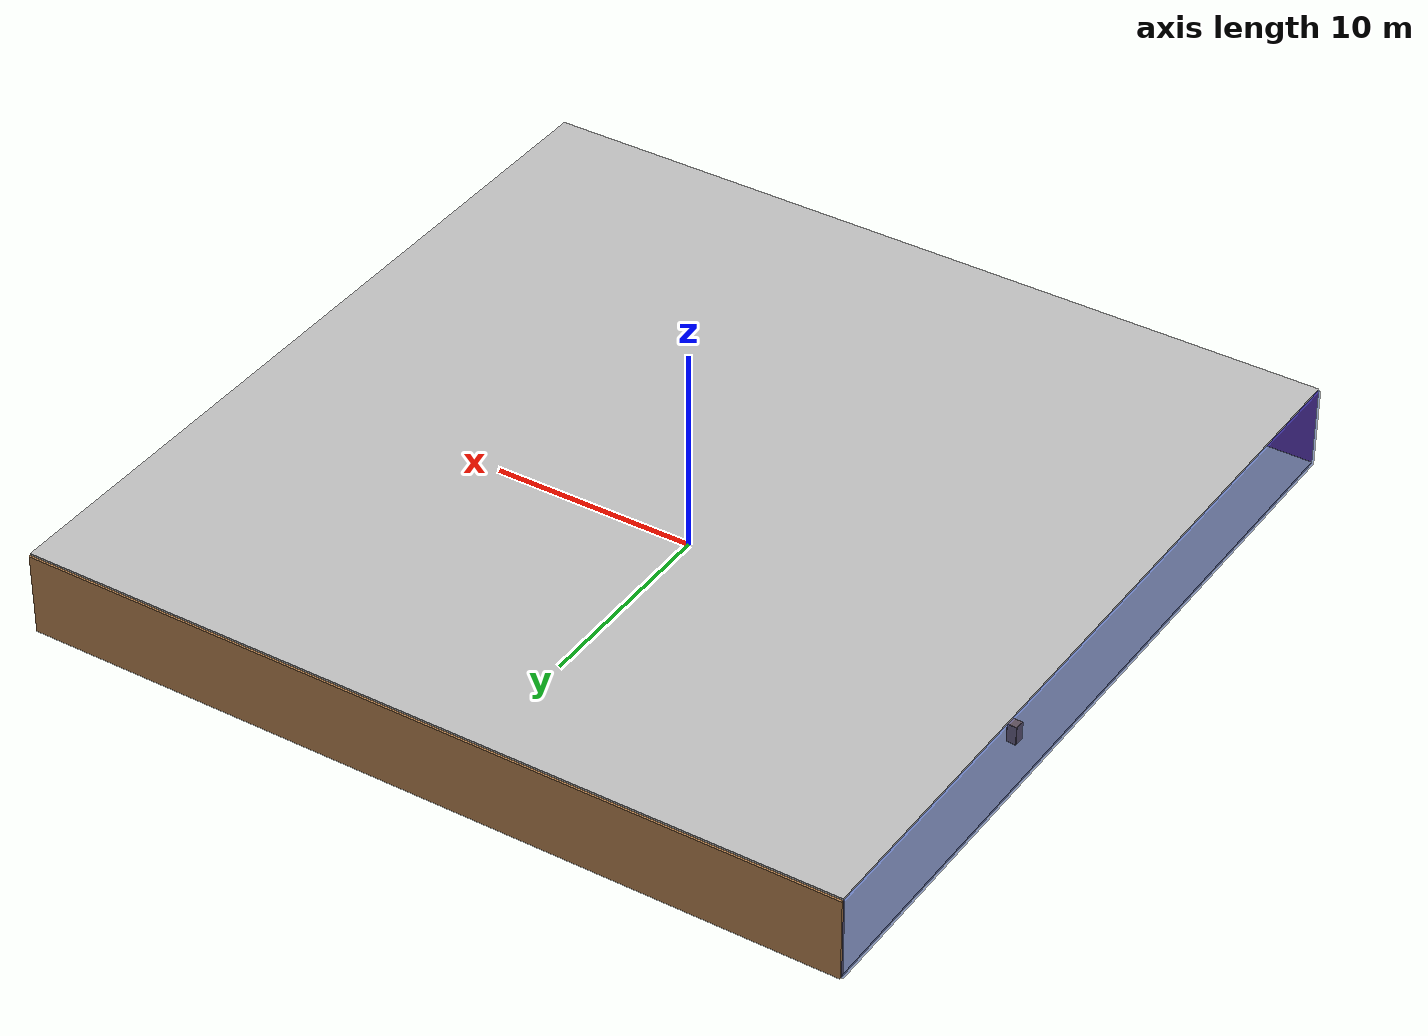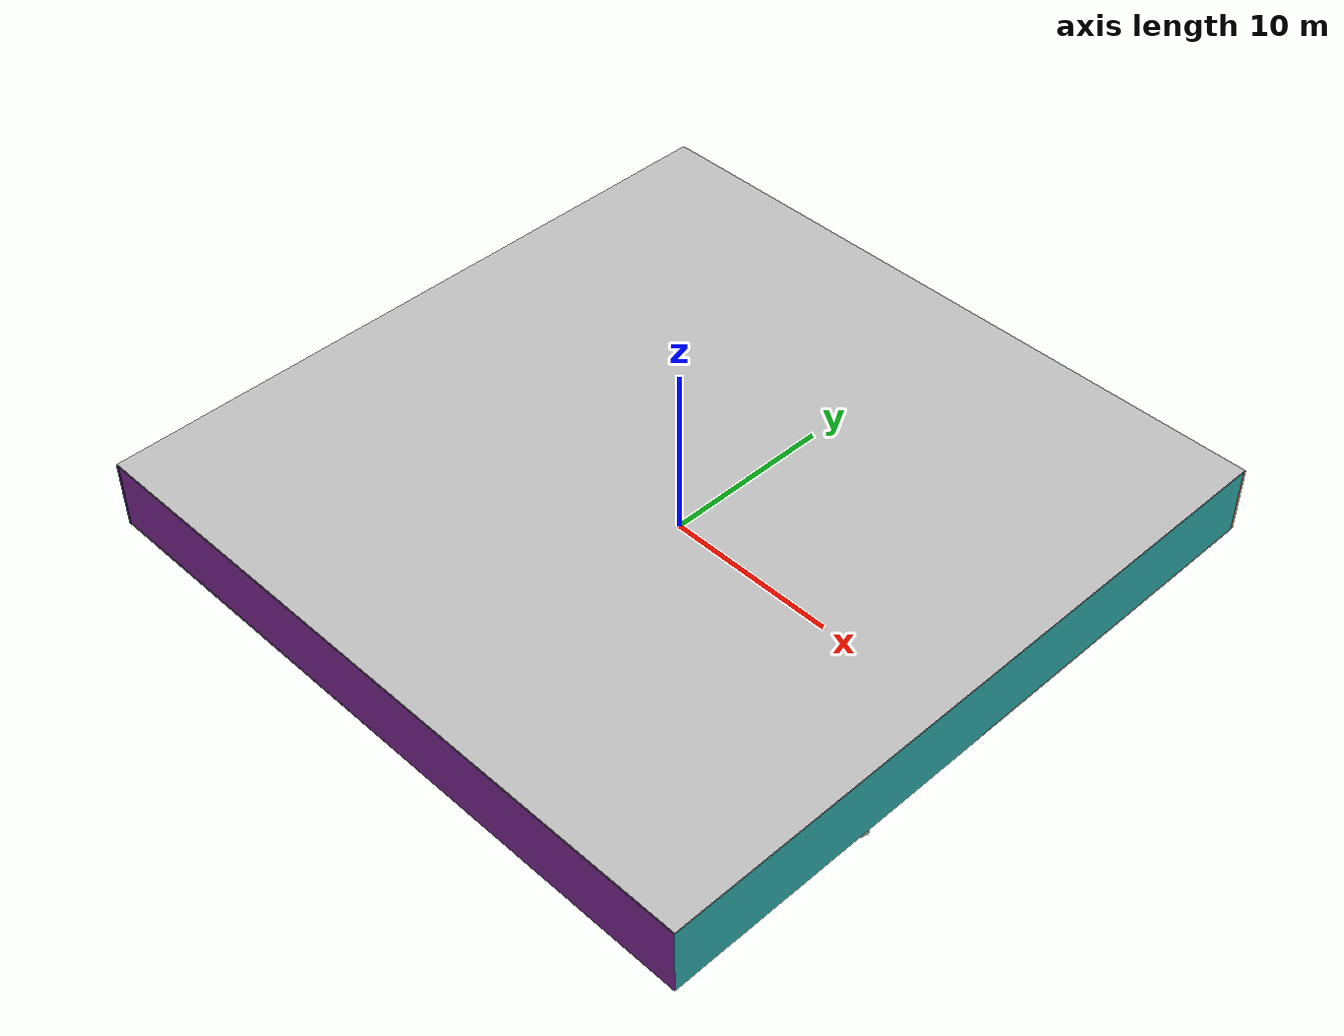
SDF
<sdf version="1.4">
 <world name="default">
  <physics type="ode">
   <max_step_size>0.001</max_step_size>
   <real_time_factor>1</real_time_factor>
   <real_time_update_rate>1000</real_time_update_rate>
   <gravity>0 0 -9.8</gravity>
  </physics>
  <scene><ambient>0.4 0.4 0.4 1</ambient><background>0.7 0.7 0.7 1</background><shadows>1</shadows></scene>
  <model name="Surrounding">
   <static>1</static>
   <link name="Ceiling">
    <collision name="Ceiling_Collision"><geometry><box><size>40 40 0.1</size></box></geometry></collision>
    <visual name="Ceiling_Visual">
     <geometry><box><size>40 40 0.1</size></box></geometry>
     <material>
      <script><uri>file://media/materials/scripts/gazebo.material</uri><name>Gazebo/Pioneer2Body</name></script>
     </material>
    </visual>
    <pose>0 0 4.05 0 0 0</pose>
   </link>
   <link name="Wall_South">
    <collision name="Wall_South_Collision">
     <geometry><box><size>40 0 4</size></box></geometry>
     <pose>0 0 2 0 -0 0</pose>
    </collision>
    <visual name="Wall_South_Visual">
     <pose>0 0 2 0 -0 0</pose>
     <geometry><box><size>40 0 4</size></box></geometry>
     <material>
      <script><uri>file://media/materials/scripts/gazebo.material</uri><name>Gazebo/PurpleGlow</name></script>
     </material>
    </visual>
    <velocity_decay><linear>0</linear><angular>0</angular></velocity_decay>
    <pose>0 -20 0 0 -0 0</pose>
   </link>
   <link name="Wall_East">
    <collision name="Wall_21_Collision">
     <geometry><box><size>40 0 4</size></box></geometry>
     <pose>0 0 2 0 -0 0</pose>
    </collision>
    <visual name="Wall_21_Visual">
     <pose>0 0 2 0 -0 0</pose>
     <geometry><box><size>40 0 4</size></box></geometry>
     <material>
      <script><uri>file://media/materials/scripts/gazebo.material</uri><name>Gazebo/TurquoiseGlow</name></script>
     </material>
    </visual>
    <velocity_decay><linear>0</linear><angular>0</angular></velocity_decay>
    <pose>20 0 0 0 -0 1.5708</pose>
   </link>
   <link name="Wall_North">
    <collision name="Wall_22_Collision">
     <geometry><box><size>40 0.2 4</size></box></geometry>
     <pose>0 0 2 0 -0 0</pose>
    </collision>
    <visual name="Wall_22_Visual">
     <pose>0 0 2 0 -0 0</pose>
     <geometry><box><size>40 0.2 4</size></box></geometry>
     <material>
      <script><uri>file://media/materials/scripts/gazebo.material</uri><name>Gazebo/Wood</name></script>
     </material>
    </visual>
    <velocity_decay><linear>0</linear><angular>0</angular></velocity_decay>
    <pose>0 20 0 0 -0 0</pose>
   </link>
   <link name="Wall_West">
    <collision name="Wall_23_Collision">
     <geometry><box><size>40 0.2 4</size></box></geometry>
     <pose>0 0 2 0 -0 0</pose>
    </collision>
    <visual name="Wall_23_Visual">
     <pose>0 0 2 0 -0 0</pose>
     <geometry><box><size>40 0.2 4</size></box></geometry>
     <material>
      <script><uri>file://media/materials/scripts/gazebo.material</uri><name>Gazebo/BlueTransparent</name></script>
     </material>
    </visual>
    <velocity_decay><linear>0</linear><angular>0</angular></velocity_decay>
    <pose>-20 0 0 0 0 -1.5708</pose>
   </link>
   <link name="Ground_link">
    <collision name="collision">
     <pose>0 0 .05 0 -0 0</pose>
     <geometry><box><size>40 40 0.1</size></box></geometry>
    </collision>
    <visual name="visual">
     <pose>0 0 .05 0 -0 0</pose>
     <geometry><box><size>40 40 0.1</size></box></geometry>
     <material>
      <script><uri>file://media/materials/scripts/gazebo.material</uri><name>Gazebo/PioneerBody</name></script>
     </material>
    </visual>
   </link>
   <static>1</static>
  </model>
  <spherical_coordinates>
   <surface_model>EARTH_WGS84</surface_model>
   <latitude_deg>0</latitude_deg>
   <longitude_deg>0</longitude_deg>
   <elevation>0</elevation>
   <heading_deg>0</heading_deg>
  </spherical_coordinates>
  <light name="lightball_0" type="diffuse">
   <diffuse>0.8 0.8 0.8 1</diffuse>
   <specular>0.2 0.2 0.2 1</specular>
   <attenuation>
    <range>100</range>
    <constant>0.7</constant>
    <linear>0.01</linear>
    <quadratic>0.001</quadratic>
   </attenuation>
   <direction>-0.5 0.1 -0.9</direction>
   <pose>19.8048172522 3.59837712502 0.521219167332 0 0 0</pose>
  </light>
  <light name="lightball_1" type="diffuse">
   <diffuse>0.8 0.8 0.8 1</diffuse>
   <specular>0.2 0.2 0.2 1</specular>
   <attenuation>
    <range>100</range>
    <constant>0.7</constant>
    <linear>0.01</linear>
    <quadratic>0.001</quadratic>
   </attenuation>
   <direction>-0.5 0.1 -0.9</direction>
   <pose>-17.4147928435 -3.67787587363 3.3420704936 0 0 0</pose>
  </light>
  <light name="lightball_2" type="diffuse">
   <diffuse>0.8 0.8 0.8 1</diffuse>
   <specular>0.2 0.2 0.2 1</specular>
   <attenuation>
    <range>100</range>
    <constant>0.7</constant>
    <linear>0.01</linear>
    <quadratic>0.001</quadratic>
   </attenuation>
   <direction>-0.5 0.1 -0.9</direction>
   <pose>-19.1223348524 -6.37787340527 2.40893292796 0 0 0</pose>
  </light>
  <light name="lightball_3" type="diffuse">
   <diffuse>0.8 0.8 0.8 1</diffuse>
   <specular>0.2 0.2 0.2 1</specular>
   <attenuation>
    <range>100</range>
    <constant>0.7</constant>
    <linear>0.01</linear>
    <quadratic>0.001</quadratic>
   </attenuation>
   <direction>-0.5 0.1 -0.9</direction>
   <pose>12.5805700689 4.95744221146 3.09961473902 0 0 0</pose>
  </light>
  <light name="lightball_4" type="diffuse">
   <diffuse>0.8 0.8 0.8 1</diffuse>
   <specular>0.2 0.2 0.2 1</specular>
   <attenuation>
    <range>100</range>
    <constant>0.7</constant>
    <linear>0.01</linear>
    <quadratic>0.001</quadratic>
   </attenuation>
   <direction>-0.5 0.1 -0.9</direction>
   <pose>1.72294936691 19.11780405 2.44128088806 0 0 0</pose>
  </light>
  <light name="lightball_5" type="diffuse">
   <diffuse>0.8 0.8 0.8 1</diffuse>
   <specular>0.2 0.2 0.2 1</specular>
   <attenuation>
    <range>100</range>
    <constant>0.7</constant>
    <linear>0.01</linear>
    <quadratic>0.001</quadratic>
   </attenuation>
   <direction>-0.5 0.1 -0.9</direction>
   <pose>18.7451109525 4.75904344949 2.33460759449 0 0 0</pose>
  </light>
  <light name="lightball_6" type="diffuse">
   <diffuse>0.8 0.8 0.8 1</diffuse>
   <specular>0.2 0.2 0.2 1</specular>
   <attenuation>
    <range>100</range>
    <constant>0.7</constant>
    <linear>0.01</linear>
    <quadratic>0.001</quadratic>
   </attenuation>
   <direction>-0.5 0.1 -0.9</direction>
   <pose>2.69931567103 -3.56886332181 3.57447868117 0 0 0</pose>
  </light>
  <light name="lightball_7" type="diffuse">
   <diffuse>0.8 0.8 0.8 1</diffuse>
   <specular>0.2 0.2 0.2 1</specular>
   <attenuation>
    <range>100</range>
    <constant>0.7</constant>
    <linear>0.01</linear>
    <quadratic>0.001</quadratic>
   </attenuation>
   <direction>-0.5 0.1 -0.9</direction>
   <pose>11.9621023523 -7.37143733345 1.1079864548 0 0 0</pose>
  </light>
  <light name="lightball_8" type="diffuse">
   <diffuse>0.8 0.8 0.8 1</diffuse>
   <specular>0.2 0.2 0.2 1</specular>
   <attenuation>
    <range>100</range>
    <constant>0.7</constant>
    <linear>0.01</linear>
    <quadratic>0.001</quadratic>
   </attenuation>
   <direction>-0.5 0.1 -0.9</direction>
   <pose>17.0176620258 4.08510648492 1.43316597497 0 0 0</pose>
  </light>
  <include><uri>model://cabinet</uri><pose>-18.5058800158 3.9201294301 0 0 0 1.50419448902</pose></include>
  <include>
   <uri>model://robocup_3Dsim_goal</uri>
   <pose>-15.6442315798 -17.3052786982 0 0 0 0.215511307689</pose>
  </include>
  <include>
   <uri>model://textured_shapes</uri>
   <pose>-10.9303769963 -15.5310909528 0 0 0 2.28503456086</pose>
  </include>
  <include>
   <uri>model://textured_shapes</uri>
   <pose>-10.745423889 -12.1939182696 0 0 0 2.95643729755</pose>
  </include>
  <include>
   <uri>model://robocup_3Dsim_goal</uri>
   <pose>-11.7190344287 3.7808327524 0 0 0 2.81072897287</pose>
  </include>
  <include>
   <uri>model://robocup_3Dsim_goal</uri>
   <pose>-10.8872208098 10.6665697067 0 0 0 2.36482485377</pose>
  </include>
  <include>
   <uri>model://construction_cone</uri>
   <pose>-10.9195741729 19.3851323133 0 0 0 1.38317287317</pose>
  </include>
  <include>
   <uri>model://textured_shapes</uri>
   <pose>-9.39071693063 14.7325461445 0 0 0 2.48603410369</pose>
  </include>
  <include>
   <uri>model://robocup_3Dsim_goal</uri>
   <pose>-5.85781535812 -3.39392648729 0 0 0 2.7303912776</pose>
  </include>
  <include>
   <uri>model://construction_cone</uri>
   <pose>-6.28237969702 10.0760737088 0 0 0 1.82715901986</pose>
  </include>
  <include>
   <uri>model://robocup_3Dsim_goal</uri>
   <pose>-4.61191839228 18.2248957067 0 0 0 1.66774259128</pose>
  </include>
  <include><uri>model://cabinet</uri><pose>-2.59516729301 -2.47021422191 0 0 0 1.14717320971</pose></include>
  <include><uri>model://table</uri><pose>-1.52401231923 -0.277754199178 0 0 0 1.48615408671</pose></include>
  <include><uri>model://table</uri><pose>-0.295898298101 -15.5217560604 0 0 0 2.92905128751</pose></include>
  <include><uri>model://cabinet</uri><pose>1.23088150961 -7.92475984613 0 0 0 0.260412381303</pose></include>
  <include>
   <uri>model://construction_cone</uri>
   <pose>2.90641473997 -11.3818326524 0 0 0 2.81336667498</pose>
  </include>
  <include><uri>model://cabinet</uri><pose>3.85210974852 7.37434999639 0 0 0 2.78829096766</pose></include>
  <include>
   <uri>model://robocup_3Dsim_goal</uri>
   <pose>5.78249876929 3.58145434104 0 0 0 2.57544360023</pose>
  </include>
  <include>
   <uri>model://robocup_3Dsim_goal</uri>
   <pose>6.38665845926 16.415191481 0 0 0 0.391696173151</pose>
  </include>
  <include><uri>model://cabinet</uri><pose>10.0597249037 12.2549244161 0 0 0 2.26695368879</pose></include>
  <include><uri>model://cabinet</uri><pose>8.43334796836 18.5931701756 0 0 0 2.45168854782</pose></include>
  <include><uri>model://cabinet</uri><pose>13.2083066683 14.7801187106 0 0 0 3.11327708398</pose></include>
  <include><uri>model://cabinet</uri><pose>18.2058161549 -14.1190743055 0 0 0 0.273074965252</pose></include>
  <include>
   <uri>model://textured_shapes</uri>
   <pose>17.8338163232 -7.54896398114 0 0 0 1.28499075953</pose>
  </include>
 </world>
</sdf>

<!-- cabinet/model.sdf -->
<sdf version="1.5">
  <model name="cabinet">
    <static>true</static>
    <link name="cabinet_bottom_plate">
      <inertial>
        <pose>0 0 -1 0 0 0</pose>
        <inertia>
          <ixx>2.050000</ixx>
          <ixy>0</ixy>
          <ixz>0</ixz>
          <iyy>2.050000</iyy>
          <iyz>0</iyz>
          <izz>2.050000</izz>
        </inertia>
        <mass>25.000000</mass>
      </inertial>
      <collision name="cabinet_bottom_plate_geom">
        <pose>0 0 0.010000 0 0 0</pose>
        <geometry>
          <box>
            <size>0.450000 0.450000 0.020000</size>
          </box>
        </geometry>
      </collision>
      <visual name="cabinet_bottom_plate_geom_visual">
        <pose>0 0 0.010000 0 0 0</pose>
        <geometry>
          <box>
            <size>0.450000 0.450000 0.020000</size>
          </box>
        </geometry>
        <material>
          <script>
            <uri>model://media/materials/scripts/gazebo.material</uri>
            <name>Gazebo/Wood</name>
          </script>
        </material>
      </visual>
      <collision name="cabinet_bottom_plate_geom_cabinet_back_plate">
        <pose>0.235000 0 0.510000 0 0 0</pose>
        <geometry>
          <box>
            <size>0.020000 0.450000 1.020000</size>
          </box>
        </geometry>
      </collision>
      <visual name="cabinet_bottom_plate_geom_cabinet_back_plate_visual">
        <pose>0.235000 0 0.510000 0 0 0</pose>
        <geometry>
          <box>
            <size>0.020000 0.450000 1.020000</size>
          </box>
        </geometry>
        <material>
          <script>
            <uri>model://media/materials/scripts/gazebo.material</uri>
            <name>Gazebo/Wood</name>
          </script>
        </material>
      </visual>
      <collision name="cabinet_bottom_plate_geom_cabinet_left_plate">
        <pose>0 0.235000 0.510000 0 0 0</pose>
        <geometry>
          <box>
            <size>0.450000 0.020000 1.020000</size>
          </box>
        </geometry>
      </collision>
      <visual name="cabinet_bottom_plate_geom_cabinet_left_plate_visual">
        <pose>0 0.235000 0.510000 0 0 0</pose>
        <geometry>
          <box>
            <size>0.450000 0.020000 1.020000</size>
          </box>
        </geometry>
        <material>
          <script>
            <uri>model://media/materials/scripts/gazebo.material</uri>
            <name>Gazebo/Wood</name>
          </script>
        </material>
      </visual>
      <collision name="cabinet_bottom_plate_geom_cabinet_middle_plate">
        <pose>0 0 0.510000 0 0 0</pose>
        <geometry>
          <box>
            <size>0.450000 0.450000 0.020000</size>
          </box>
        </geometry>
      </collision>
      <visual name="cabinet_bottom_plate_geom_cabinet_middle_plate_visual">
        <pose>0 0 0.510000 0 0 0</pose>
        <geometry>
          <box>
            <size>0.450000 0.450000 0.020000</size>
          </box>
        </geometry>
        <material>
          <script>
            <uri>model://media/materials/scripts/gazebo.material</uri>
            <name>Gazebo/Wood</name>
          </script>
        </material>
      </visual>
      <collision name="cabinet_bottom_plate_geom_cabinet_right_plate">
        <pose>0 -0.235000 0.510000 0 0 0</pose>
        <geometry>
          <box>
            <size>0.450000 0.020000 1.020000</size>
          </box>
        </geometry>
      </collision>
      <visual name="cabinet_bottom_plate_geom_cabinet_right_plate_visual">
        <pose>0 -0.235000 0.510000 0 0 0</pose>
        <geometry>
          <box>
            <size>0.450000 0.020000 1.020000</size>
          </box>
        </geometry>
        <material>
          <script>
            <uri>model://media/materials/scripts/gazebo.material</uri>
            <name>Gazebo/Wood</name>
          </script>
        </material>
      </visual>
      <collision name="cabinet_bottom_plate_geom_cabinet_top_plate">
        <pose>0 0 1.010000 0 0 0</pose>
        <geometry>
          <box>
            <size>0.450000 0.450000 0.020000</size>
          </box>
        </geometry>
      </collision>
      <visual name="cabinet_bottom_plate_geom_cabinet_top_plate_visual">
        <pose>0 0 1.010000 0 0 0</pose>
        <geometry>
          <box>
            <size>0.450000 0.450000 0.020000</size>
          </box>
        </geometry>
        <material>
          <script>
            <uri>model://media/materials/scripts/gazebo.material</uri>
            <name>Gazebo/Wood</name>
          </script>
        </material>
      </visual>
    </link>
  </model>
</sdf>

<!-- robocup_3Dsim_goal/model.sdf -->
<sdf version="1.5">
  <model name="robocup_3d_goal">
    <static>true</static>
    <link name="left_post">
      <pose>0 1.05 0.45 0 0 0</pose>
      <collision name="collision">
        <geometry>
          <cylinder>
            <radius>0.05</radius>
            <length>0.9</length>
          </cylinder>
        </geometry>
      </collision>
      <visual name="visual">
        <geometry>
          <cylinder>
            <radius>0.05</radius>
            <length>0.9</length>
          </cylinder>
        </geometry>
        <material>
          <script>
            <uri>file://media/materials/scripts/gazebo.material</uri>
            <name>Gazebo/ZincYellow</name>
          </script>
        </material>
      </visual>
    </link>
    <link name="left_support_horiz_lower">
      <pose>0.30 1.05 0.01 0 0 0</pose>
      <collision name="collision">
        <geometry>
          <box>
            <size>0.50 0.02 0.02</size>
          </box>
        </geometry>
      </collision>
      <visual name="visual">
        <geometry>
          <box>
            <size>0.50 0.02 0.02</size>
          </box>
        </geometry>
        <material>
          <script>
            <uri>file://media/materials/scripts/gazebo.material</uri>
            <name>Gazebo/White</name>
          </script>
        </material>
      </visual>
    </link>
    <link name="left_support_horiz_upper">
      <pose>0.30 1.05 0.79 0 0 0</pose>
      <collision name="collision">
        <geometry>
          <box>
            <size>0.50 0.02 0.02</size>
          </box>
        </geometry>
      </collision>
      <visual name="visual">
        <geometry>
          <box>
            <size>0.50 0.02 0.02</size>
          </box>
        </geometry>
        <material>
          <script>
            <uri>file://media/materials/scripts/gazebo.material</uri>
            <name>Gazebo/White</name>
          </script>
        </material>
      </visual>
    </link>
    <link name="left_support_vertical">
      <pose>0.56 1.05 0.4 0 1.5708 0</pose>
      <collision name="collision">
        <geometry>
          <box>
            <size>0.80 0.02 0.02</size>
          </box>
        </geometry>
      </collision>
      <visual name="visual">
        <geometry>
          <box>
            <size>0.80 0.02 0.02</size>
          </box>
        </geometry>
        <material>
          <script>
            <uri>file://media/materials/scripts/gazebo.material</uri>
            <name>Gazebo/White</name>
          </script>
        </material>
      </visual>
    </link>
    <link name="right_support_horiz_lower">
      <pose>0.30 -1.05 0.01 0 0 0</pose>
      <collision name="collision">
        <geometry>
          <box>
            <size>0.50 0.02 0.02</size>
          </box>
        </geometry>
      </collision>
      <visual name="visual">
        <geometry>
          <box>
            <size>0.50 0.02 0.02</size>
          </box>
        </geometry>
        <material>
          <script>
            <uri>file://media/materials/scripts/gazebo.material</uri>
            <name>Gazebo/White</name>
          </script>
        </material>
      </visual>
    </link>
    <link name="right_support_horiz_upper">
      <pose>0.30 -1.05 0.79 0 0 0</pose>
      <collision name="collision">
        <geometry>
          <box>
            <size>0.50 0.02 0.02</size>
          </box>
        </geometry>
      </collision>
      <visual name="visual">
        <geometry>
          <box>
            <size>0.50 0.02 0.02</size>
          </box>
        </geometry>
        <material>
          <script>
            <uri>file://media/materials/scripts/gazebo.material</uri>
            <name>Gazebo/White</name>
          </script>
        </material>
      </visual>
    </link>
    <link name="right_support_vertical">
      <pose>0.56 -1.05 0.4 0 1.5708 0</pose>
      <collision name="collision">
        <geometry>
          <box>
            <size>0.80 0.02 0.02</size>
          </box>
        </geometry>
      </collision>
      <visual name="visual">
        <geometry>
          <box>
            <size>0.80 0.02 0.02</size>
          </box>
        </geometry>
        <material>
          <script>
            <uri>file://media/materials/scripts/gazebo.material</uri>
            <name>Gazebo/White</name>
          </script>
        </material>
      </visual>
    </link>
    <link name="center_support_horiz_lower">
      <pose>0.56 0 0.01 0 1.5708 0</pose>
      <collision name="collision">
        <geometry>
          <box>
            <size>0.02 2.08 0.02</size>
          </box>
        </geometry>
      </collision>
      <visual name="visual">
        <geometry>
          <box>
            <size>0.02 2.08 0.02</size>
          </box>
        </geometry>
        <material>
          <script>
            <uri>file://media/materials/scripts/gazebo.material</uri>
            <name>Gazebo/White</name>
          </script>
        </material>
      </visual>
    </link>
    <link name="center_support_horiz_upper">
      <pose>0.56 0 0.79 0 1.5708 0</pose>
      <collision name="collision">
        <geometry>
          <box>
            <size>0.02 2.08 0.02</size>
          </box>
        </geometry>
      </collision>
      <visual name="visual">
        <geometry>
          <box>
            <size>0.02 2.08 0.02</size>
          </box>
        </geometry>
        <material>
          <script>
            <uri>file://media/materials/scripts/gazebo.material</uri>
            <name>Gazebo/White</name>
          </script>
        </material>
      </visual>
    </link>
    <link name="right_post">
      <pose>0 -1.05 0.45 0 0 0</pose>
      <collision name="collision">
        <geometry>
          <cylinder>
            <radius>0.05</radius>
            <length>0.9</length>
          </cylinder>
        </geometry>
      </collision>
      <visual name="visual">
        <geometry>
          <cylinder>
            <radius>0.05</radius>
            <length>0.9</length>
          </cylinder>
        </geometry>
        <material>
          <script>
            <uri>file://media/materials/scripts/gazebo.material</uri>
            <name>Gazebo/ZincYellow</name>
          </script>
        </material>
      </visual>
    </link>
    <link name="crossbar">
      <pose>0 0 0.85 1.57 1.57 0</pose>
      <collision name="collision">
        <geometry>
          <cylinder>
            <radius>0.05</radius>
            <length>2.0</length>
          </cylinder>
        </geometry>
      </collision>
      <visual name="visual">
        <geometry>
          <cylinder>
            <radius>0.05</radius>
            <length>2.0</length>
          </cylinder>
        </geometry>
        <material>
          <script>
            <uri>file://media/materials/scripts/gazebo.material</uri>
            <name>Gazebo/ZincYellow</name>
          </script>
        </material>
      </visual>
    </link>
    <link name="center_net">
      <pose>0.56 0 0.40 0 0 0</pose>
      <collision name="collision">
        <geometry>
          <box>
            <size>0.01 2.1 0.80</size>
          </box>
        </geometry>
      </collision>
      <visual name="visual">
        <geometry>
          <box>
            <size>0.01 2.1 0.80</size>
          </box>
        </geometry>
        <material>
          <script>
            <uri>model://../model_source/models/robocup09_spl_field/materials/scripts/</uri>
            <uri>model://../model_source/models/robocup09_spl_field/materials/textures/</uri>
            <name>RoboCup/Net</name>
          </script>
        </material>
      </visual>
    </link>
    <link name="left_net">
      <pose>0.30 1.05 0.40 0 0 0</pose>
      <collision name="collision">
        <geometry>
          <box>
            <size>0.50 0.01 0.76</size>
          </box>
        </geometry>
      </collision>
      <visual name="visual">
        <geometry>
          <box>
            <size>0.50 0.01 0.76</size>
          </box>
        </geometry>
        <material>
          <script>
            <uri>model://../model_source/models/robocup09_spl_field/materials/scripts/</uri>
            <uri>model://../model_source/models/robocup09_spl_field/materials/textures/</uri>
            <name>RoboCup/Net</name>
          </script>
        </material>
      </visual>
    </link>
    <link name="right_net">
      <pose>0.30 -1.05 0.40 0 0 0</pose>
      <collision name="collision">
        <geometry>
          <box>
            <size>0.50 0.01 0.76</size>
          </box>
        </geometry>
      </collision>
      <visual name="visual">
        <geometry>
          <box>
            <size>0.50 0.01 0.76</size>
          </box>
        </geometry>
        <material>
          <script>
            <uri>model://../model_source/models/robocup09_spl_field/materials/scripts/</uri>
            <uri>model://../model_source/models/robocup09_spl_field/materials/textures/</uri>
            <name>RoboCup/Net</name>
          </script>
        </material>
      </visual>
    </link>
  </model>
</sdf>

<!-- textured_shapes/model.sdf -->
<sdf version="1.6">
  <model name="textured_shapes">
    <pose>0 0 0.5 0 0 0</pose>
    <link name="box">
      <pose>0 -1.5 0 0 0 0</pose>
      <collision name="collision">
        <geometry>
          <box>
            <size>1 1 1</size>
          </box>
        </geometry>
      </collision>
      <visual name="visual">
        <geometry>
          <box>
            <size>1 1 1</size>
          </box>
        </geometry>
        <material>
          <script>
            <uri>model://../model_source/models/textured_shapes/materials/scripts</uri>
            <uri>model://../model_source/models/textured_shapes/materials/textures</uri>
            <name>TexturedShape/Squares</name>
          </script>
        </material>
      </visual>
    </link>
    <link name="sphere">
      <collision name="collision">
        <geometry>
          <sphere>
            <radius>0.5</radius>
          </sphere>
        </geometry>
      </collision>
      <visual name="visual">
        <geometry>
          <sphere>
            <radius>0.5</radius>
          </sphere>
        </geometry>
        <material>
          <script>
            <uri>model://../model_source/models/textured_shapes/materials/scripts</uri>
            <uri>model://../model_source/models/textured_shapes/materials/textures</uri>
            <name>TexturedShape/Squares</name>
          </script>
        </material>
      </visual>
    </link>
    <link name="cylinder">
      <pose>0 1.5 0 0 0 0</pose>
      <collision name="collision">
        <geometry>
          <cylinder>
            <radius>0.5</radius>
            <length>1</length>
          </cylinder>
        </geometry>
      </collision>
      <visual name="visual">
        <geometry>
          <cylinder>
            <radius>0.5</radius>
            <length>1</length>
          </cylinder>
        </geometry>
        <material>
          <script>
            <uri>model://../model_source/models/textured_shapes/materials/scripts</uri>
            <uri>model://../model_source/models/textured_shapes/materials/textures</uri>
            <name>TexturedShape/Squares</name>
          </script>
        </material>
      </visual>
    </link>
  </model>
</sdf>

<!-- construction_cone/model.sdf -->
<sdf version="1.5">
  <model name="Construction Cone">
    <link name="link">
      <collision name="collision">
        <geometry>
          <mesh>
            <scale>10 10 10</scale>
            <uri>file://isr-testbed/construction_cone/meshes/construction_cone.dae</uri>
          </mesh>
        </geometry>
      </collision>
      <visual name="visual">
        <geometry>
          <mesh>
            <scale>10 10 10</scale>
            <uri>file://isr-testbed/construction_cone/meshes/construction_cone.dae</uri>
          </mesh>
        </geometry>
      </visual>
    </link>
  </model>
</sdf>

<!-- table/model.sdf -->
<sdf version="1.5">
  <model name="table">
    <static>true</static>
    <link name="link">
      <collision name="surface">
        <pose>0 0 1.0 0 0 0</pose>
        <geometry>
          <box>
            <size>1.5 0.8 0.03</size>
          </box>
        </geometry>
        <surface>
          <friction>
            <ode>
              <mu>0.6</mu>
              <mu2>0.6</mu2>
            </ode>
          </friction>
        </surface>
      </collision>
      <visual name="visual1">
        <pose>0 0 1.0 0 0 0</pose>
        <geometry>
          <box>
            <size>1.5 0.8 0.03</size>
          </box>
        </geometry>
        <material>
          <script>
            <uri>model://media/materials/scripts/gazebo.material</uri>
            <name>Gazebo/Wood</name>
          </script>
        </material>
      </visual>
      <collision name="front_left_leg">
        <pose>0.68 0.38 0.5 0 0 0</pose>
        <geometry>
          <cylinder>
            <radius>0.02</radius>
            <length>1.0</length>
          </cylinder>
        </geometry>
      </collision>
      <visual name="front_left_leg">
        <pose>0.68 0.38 0.5 0 0 0</pose>
        <geometry>
          <cylinder>
            <radius>0.02</radius>
            <length>1.0</length>
          </cylinder>
        </geometry>
        <material>
          <script>
            <uri>model://media/materials/scripts/gazebo.material</uri>
            <name>Gazebo/Grey</name>
          </script>
        </material>
      </visual>
      <collision name="front_right_leg">
        <pose>0.68 -0.38 0.5 0 0 0</pose>
        <geometry>
          <cylinder>
            <radius>0.02</radius>
            <length>1.0</length>
          </cylinder>
        </geometry>
      </collision>
      <visual name="front_right_leg">
        <pose>0.68 -0.38 0.5 0 0 0</pose>
        <geometry>
          <cylinder>
            <radius>0.02</radius>
            <length>1.0</length>
          </cylinder>
        </geometry>
        <material>
          <script>
            <uri>model://media/materials/scripts/gazebo.material</uri>
            <name>Gazebo/Grey</name>
          </script>
        </material>
      </visual>
      <collision name="back_right_leg">
        <pose>-0.68 -0.38 0.5 0 0 0</pose>
        <geometry>
          <cylinder>
            <radius>0.02</radius>
            <length>1.0</length>
          </cylinder>
        </geometry>
      </collision>
      <visual name="back_right_leg">
        <pose>-0.68 -0.38 0.5 0 0 0</pose>
        <geometry>
          <cylinder>
            <radius>0.02</radius>
            <length>1.0</length>
          </cylinder>
        </geometry>
        <material>
          <script>
            <uri>model://media/materials/scripts/gazebo.material</uri>
            <name>Gazebo/Grey</name>
          </script>
        </material>
      </visual>
      <collision name="back_left_leg">
        <pose>-0.68 0.38 0.5 0 0 0</pose>
        <geometry>
          <cylinder>
            <radius>0.02</radius>
            <length>1.0</length>
          </cylinder>
        </geometry>
      </collision>
      <visual name="back_left_leg">
        <pose>-0.68 0.38 0.5 0 0 0</pose>
        <geometry>
          <cylinder>
            <radius>0.02</radius>
            <length>1.0</length>
          </cylinder>
        </geometry>
        <material>
          <script>
            <uri>model://media/materials/scripts/gazebo.material</uri>
            <name>Gazebo/Grey</name>
          </script>
        </material>
      </visual>
    </link>
  </model>
</sdf>
